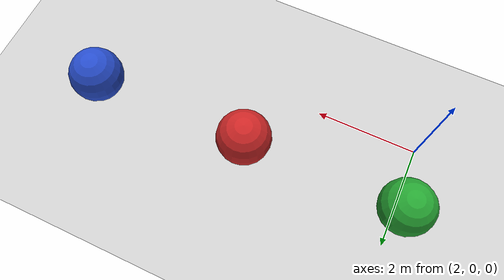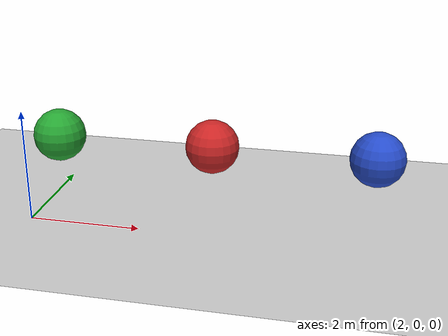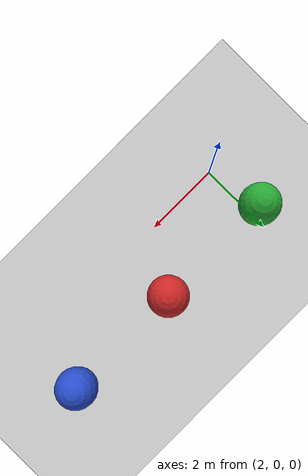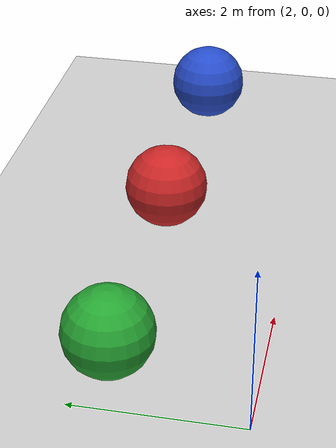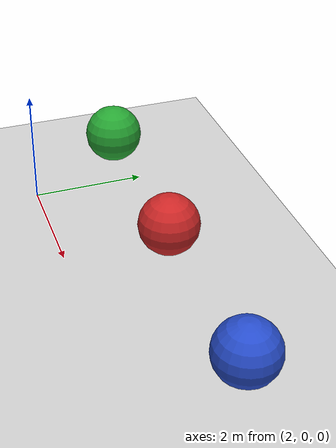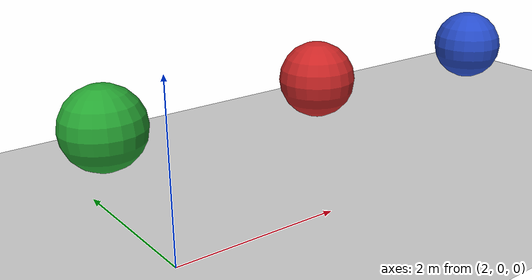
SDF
<?xml version="1.0" ?>
<sdf version="1.4">

  <world name="default">
    <include>
      <uri>model://ground_plane</uri>
    </include>

    <!-- Global light source -->
    <include>
      <uri>model://sun</uri>
    </include>

    <include>
      <uri>model://blue_ball</uri>
      <pose>8.0 1.5 1.0 0 0 0</pose>
    </include>

    <include>
      <uri>model://red_ball</uri>
      <pose>5.0 1.5 1.0 0 0 0</pose>
    </include>

    <include>
      <uri>model://green_ball</uri>
      <pose>2.0 1.5 1.0 0 0 0</pose>
    </include>

    <!-- Focus camera on tall pendulum -->
    <gui fullscreen='0'>
      <camera name='user_camera'>
        <pose>4.927360 -4.376610 3.740080 0.000000 0.275643 2.356190</pose>
        <view_controller>orbit</view_controller>
      </camera>
    </gui>

  </world>
</sdf>

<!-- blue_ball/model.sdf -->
<sdf version="1.5">
  <model name="blue_ball">
    <link name="link">
      <pose>0 0 0.05 0 0 0</pose>
      <self_collide>0</self_collide>
      <kinematic>0</kinematic>
      <gravity>0</gravity>

      <collision name="collision">
        <geometry>
          <sphere>
            <radius>0.5</radius>
          </sphere>
        </geometry>
        <surface>
          <contact>
            <collide_without_contact>1</collide_without_contact>
          </contact>
        </surface>
      </collision>

      <visual name="visual">
        <geometry>
          <sphere>
            <radius>0.5</radius>
          </sphere>
        </geometry>
        <material>
          <script>
            <uri>file://media/materials/scripts/gazebo.material</uri>
            <name>Gazebo/Blue</name>
          </script>
        </material>
      </visual>

    </link>
  </model>
</sdf>

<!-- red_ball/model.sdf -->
<sdf version="1.5">
  <model name="red_ball">
    <link name="link">
      <pose>0 0 0.05 0 0 0</pose>
      <self_collide>0</self_collide>
      <kinematic>0</kinematic>
      <gravity>0</gravity>

      <collision name="collision">
        <geometry>
          <sphere>
            <radius>0.5</radius>
          </sphere>
        </geometry>
        <surface>
          <contact>
            <collide_without_contact>1</collide_without_contact>
          </contact>
        </surface>
      </collision>

      <visual name="visual">
        <geometry>
          <sphere>
            <radius>0.5</radius>
          </sphere>
        </geometry>
        <material>
          <script>
            <uri>file://media/materials/scripts/gazebo.material</uri>
            <name>Gazebo/Red</name>
          </script>
        </material>
      </visual>

    </link>
  </model>
</sdf>

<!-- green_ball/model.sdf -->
<sdf version="1.5">
  <model name="green_ball">
    <link name="link">
      <pose>0 0 0.05 0 0 0</pose>
      <self_collide>0</self_collide>
      <kinematic>0</kinematic>
      <gravity>0</gravity>

      <collision name="collision">
        <geometry>
          <sphere>
            <radius>0.5</radius>
          </sphere>
        </geometry>
        <surface>
          <contact>
            <collide_without_contact>1</collide_without_contact>
          </contact>
        </surface>
      </collision>

      <visual name="visual">
        <geometry>
          <sphere>
            <radius>0.5</radius>
          </sphere>
        </geometry>
        <material>
          <script>
            <uri>file://media/materials/scripts/gazebo.material</uri>
            <name>Gazebo/Green</name>
          </script>
        </material>
      </visual>

    </link>
  </model>
</sdf>
